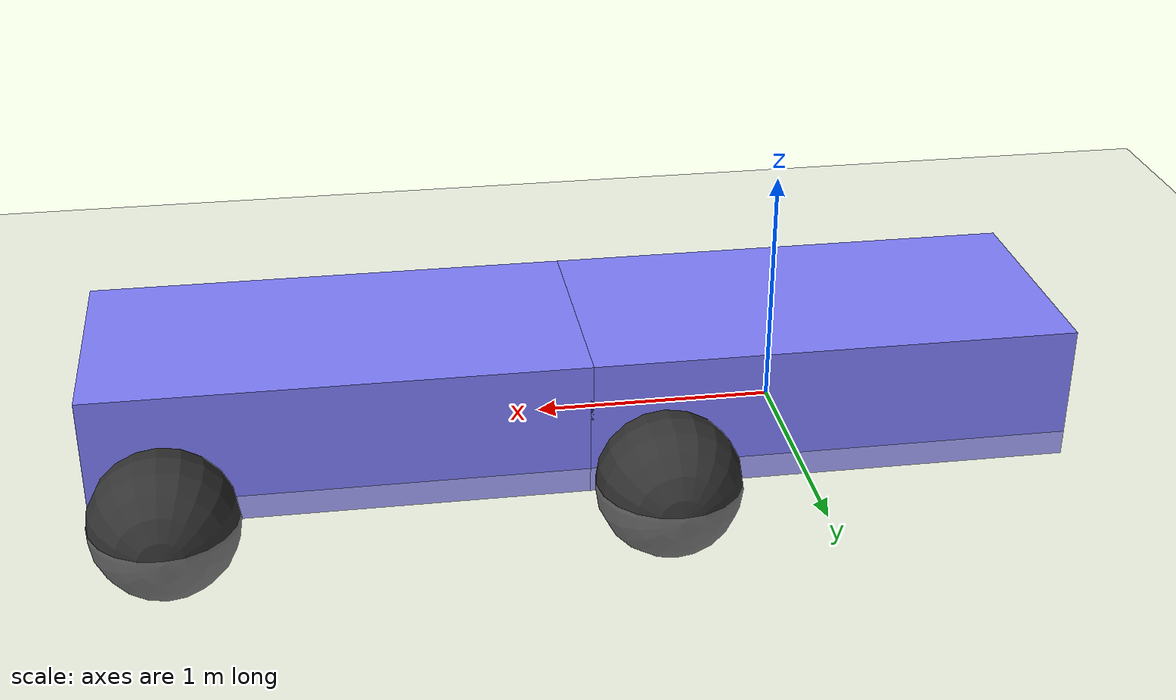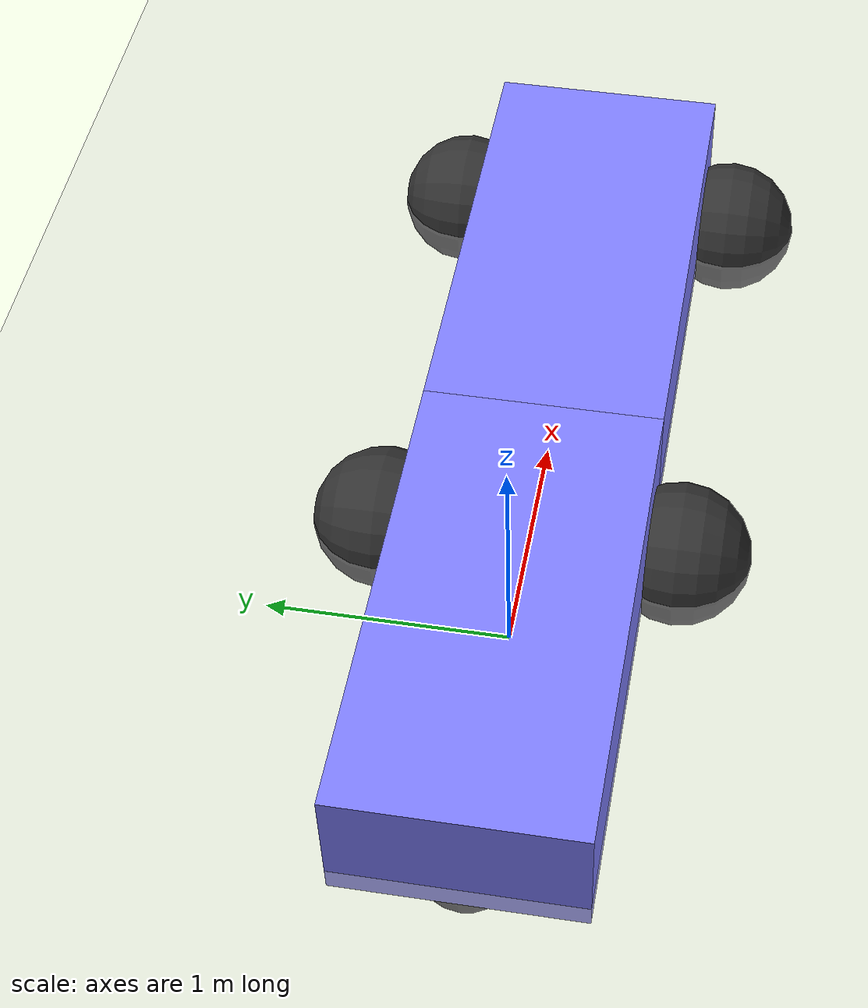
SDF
<?xml version="1.0" ?>
<sdf version="1.8">
  <world name="demo">

    <light name="sun" type="directional">
      <cast_shadows>true</cast_shadows>
      <pose>0 0 10 0 0 0</pose>
      <diffuse>0.8 0.8 0.8 1</diffuse>
      <specular>0.2 0.2 0.2 1</specular>
      <attenuation>
        <range>1000</range>
        <constant>0.9</constant>
        <linear>0.01</linear>
        <quadratic>0.001</quadratic>
      </attenuation>
      <direction>-0.5 0.1 -0.9</direction>
    </light>

    <model name="ground_plane">
      <static>true</static>
      <link name="link">
        <collision name="collision">
          <geometry>
            <plane>
              <normal>0 0 1</normal>
              <size>100 100</size>
            </plane>
          </geometry>
        </collision>
        <visual name="visual">
          <geometry>
            <plane>
              <normal>0 0 1</normal>
              <size>100 100</size>
            </plane>
          </geometry>
          <material>
            <ambient>0.8 0.8 0.8 1</ambient>
            <diffuse>0.8 0.8 0.8 1</diffuse>
            <specular>0.8 0.8 0.8 1</specular>
          </material>
        </visual>
      </link>
    </model>

    <model name="vehicle">
      <self_collide>true</self_collide>
      <pose>0 0 0 0 0 0</pose>
      <include merge="true">
        <uri>package://homework1_launcher/models/vehicle</uri>
        <name>vehicle_blue</name>
      </include>

      <plugin
        filename="gz-sim-joint-state-publisher-system"
        name="gz::sim::systems::JointStatePublisher">
      </plugin>

      <plugin
        filename="gz-sim-pose-publisher-system"
        name="gz::sim::systems::PosePublisher">
        <publish_link_pose>true</publish_link_pose>
        <use_pose_vector_msg>true</use_pose_vector_msg>
        <static_publisher>true</static_publisher>
        <static_update_frequency>1</static_update_frequency>
      </plugin>

      <plugin
        filename="gz-sim-odometry-publisher-system"
        name="gz::sim::systems::OdometryPublisher">
        <odom_frame>vehicle/odom</odom_frame>
        <robot_base_frame>vehicle</robot_base_frame>
      </plugin>

    </model>

    <model name="vehicle">
      <self_collide>true</self_collide>
      <pose>2 0 0 0 0 0</pose>
      <include merge="true">
        <uri>package://homework1_launcher/models/vehicle</uri>
        <name>vehicle_green</name>
      </include>

      <plugin
        filename="gz-sim-joint-state-publisher-system"
        name="gz::sim::systems::JointStatePublisher">
      </plugin>

      <plugin
        filename="gz-sim-pose-publisher-system"
        name="gz::sim::systems::PosePublisher">
        <publish_link_pose>true</publish_link_pose>
        <use_pose_vector_msg>true</use_pose_vector_msg>
        <static_publisher>true</static_publisher>
        <static_update_frequency>1</static_update_frequency>
      </plugin>

      <plugin
        filename="gz-sim-odometry-publisher-system"
        name="gz::sim::systems::OdometryPublisher">
        <odom_frame>vehicle/odom</odom_frame>
        <robot_base_frame>vehicle</robot_base_frame>
      </plugin>

    </model>
  </world>
</sdf>

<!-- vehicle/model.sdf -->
<sdf version="1.8">
    <model name='vehicle'>
      <link name='chassis'>
        <pose>-0.151427 -0 0.175 0 -0 0</pose>
        <inertial>
          <mass>1.14395</mass>
          <inertia>
            <ixx>0.126164</ixx>
            <ixy>0</ixy>
            <ixz>0</ixz>
            <iyy>0.416519</iyy>
            <iyz>0</iyz>
            <izz>0.481014</izz>
          </inertia>
        </inertial>
        <visual name='visual_chassis'>
          <geometry>
            <box>
              <size>2.01142 1 0.568726</size>
            </box>
          </geometry>
          <material>
            <ambient>0.5 0.5 1.0 1</ambient>
            <diffuse>0.5 0.5 1.0 1</diffuse>
            <specular>0.0 0.0 1.0 1</specular>
          </material>
        </visual>
        <collision name='collision_chassis'>
          <geometry>
            <box>
              <size>2.01142 1 0.568726</size>
            </box>
          </geometry>
        </collision>
      </link>

      <link name='left_wheel'>
        <pose>0.554283 0.625029 -0.025 -1.5707 0 0</pose>
        <inertial>
          <mass>2</mass>
          <inertia>
            <ixx>0.145833</ixx>
            <ixy>0</ixy>
            <ixz>0</ixz>
            <iyy>0.145833</iyy>
            <iyz>0</iyz>
            <izz>0.125</izz>
          </inertia>
        </inertial>
        <visual name='visual_left_wheel'>
          <geometry>
            <sphere>
              <radius>0.3</radius>
            </sphere>
          </geometry>
          <material>
            <ambient>0.2 0.2 0.2 1</ambient>
            <diffuse>0.2 0.2 0.2 1</diffuse>
            <specular>0.2 0.2 0.2 1</specular>
          </material>
        </visual>
        <collision name='collision_left_wheel'>
          <geometry>
            <sphere>
              <radius>0.3</radius>
            </sphere>
          </geometry>
        </collision>
      </link>

      <link name='right_wheel'>
        <pose>0.554282 -0.625029 -0.025 -1.5707 0 0</pose>
        <inertial>
          <mass>2</mass>
          <inertia>
            <ixx>0.145833</ixx>
            <ixy>0</ixy>
            <ixz>0</ixz>
            <iyy>0.145833</iyy>
            <iyz>0</iyz>
            <izz>0.125</izz>
          </inertia>
        </inertial>
        <visual name='visual_right_wheel'>
          <geometry>
            <sphere>
              <radius>0.3</radius>
            </sphere>
          </geometry>
          <material>
            <ambient>0.2 0.2 0.2 1</ambient>
            <diffuse>0.2 0.2 0.2 1</diffuse>
            <specular>0.2 0.2 0.2 1</specular>
          </material>
        </visual>
        <collision name='collision_right_wheel'>
          <geometry>
            <sphere>
              <radius>0.3</radius>
            </sphere>
          </geometry>
        </collision>
      </link>

      <link name='caster'>
        <pose>-0.957138 -0 -0.125 0 -0 0</pose>
        <inertial>
          <mass>1</mass>
          <inertia>
            <ixx>0.1</ixx>
            <ixy>0</ixy>
            <ixz>0</ixz>
            <iyy>0.1</iyy>
            <iyz>0</iyz>
            <izz>0.1</izz>
          </inertia>
        </inertial>
        <visual name='visual_caster'>
          <geometry>
            <sphere>
              <radius>0.2</radius>
            </sphere>
          </geometry>
          <material>
            <ambient>0.2 0.2 0.2 1</ambient>
            <diffuse>0.2 0.2 0.2 1</diffuse>
            <specular>0.2 0.2 0.2 1</specular>
          </material>
        </visual>
        <collision name='collision_caster'>
          <geometry>
            <sphere>
              <radius>0.2</radius>
            </sphere>
          </geometry>
        </collision>
      </link>

      <link name="camera_link_blue">
        <pose>0.3 0 0.4 0 0 0</pose>
        <inertial><mass>0.1</mass></inertial>
        <sensor name="rgbd_blue" type="rgbd_camera">
          <update_rate>20</update_rate>
          <pose>0 0 0 0 0 0</pose>
          <camera>
            <horizontal_fov>1.05</horizontal_fov>
            <image>
              <width>640</width>
              <height>480</height>
              <format>R8G8B8</format>
            </image>
            <clip>
              <near>0.05</near>
              <far>10.0</far>
            </clip>
          </camera>
          <topic>/gz/vehicle_blue/rgbd</topic>
        </sensor>
      </link>

      <joint name='left_wheel_joint' type='revolute'>
        <parent>chassis</parent>
        <child>left_wheel</child>
        <axis>
          <xyz>0 0 1</xyz>
          <limit>
            <lower>-1.79769e+308</lower>
            <upper>1.79769e+308</upper>
          </limit>
        </axis>
      </joint>

      <joint name='right_wheel_joint' type='revolute'>
        <parent>chassis</parent>
        <child>right_wheel</child>
        <axis>
          <xyz>0 0 1</xyz>
          <limit>
            <lower>-1.79769e+308</lower>
            <upper>1.79769e+308</upper>
          </limit>
        </axis>
      </joint>

      <joint name='caster_wheel' type='ball'>
        <parent>chassis</parent>
        <child>caster</child>
      </joint>

      <plugin
        filename="ignition-gazebo-diff-drive-system"
        name="ignition::gazebo::systems::DiffDrive">
        <left_joint>left_wheel_joint</left_joint>
        <right_joint>right_wheel_joint</right_joint>
        <wheel_separation>1.25</wheel_separation>
        <wheel_radius>0.3</wheel_radius>
        <odom_publish_frequency>1</odom_publish_frequency>
        <max_linear_acceleration>1</max_linear_acceleration>
        <min_linear_acceleration>-1</min_linear_acceleration>
        <max_angular_acceleration>2</max_angular_acceleration>
        <min_angular_acceleration>-2</min_angular_acceleration>
        <max_linear_velocity>0.5</max_linear_velocity>
        <min_linear_velocity>-0.5</min_linear_velocity>
        <max_angular_velocity>1</max_angular_velocity>
        <min_angular_velocity>-1</min_angular_velocity>
      </plugin>

    </model>
</sdf>
